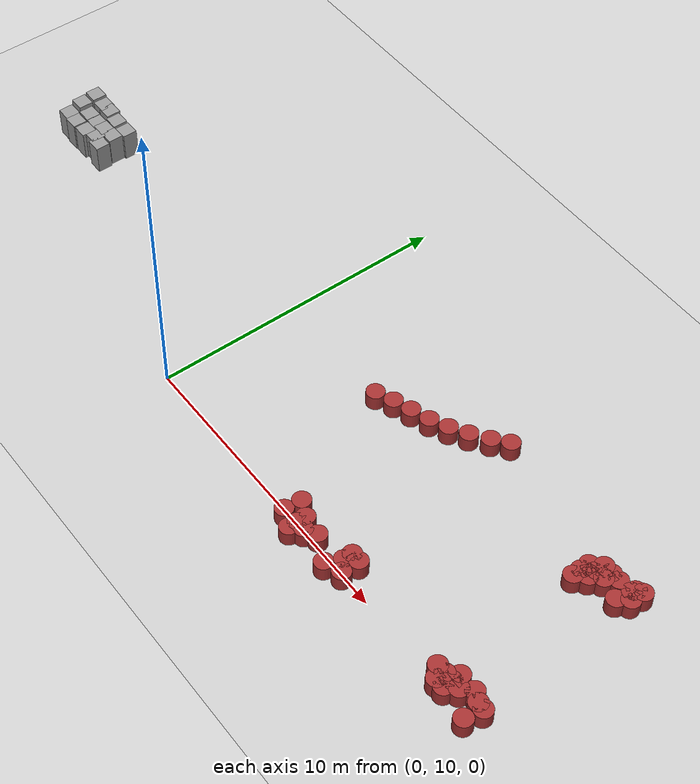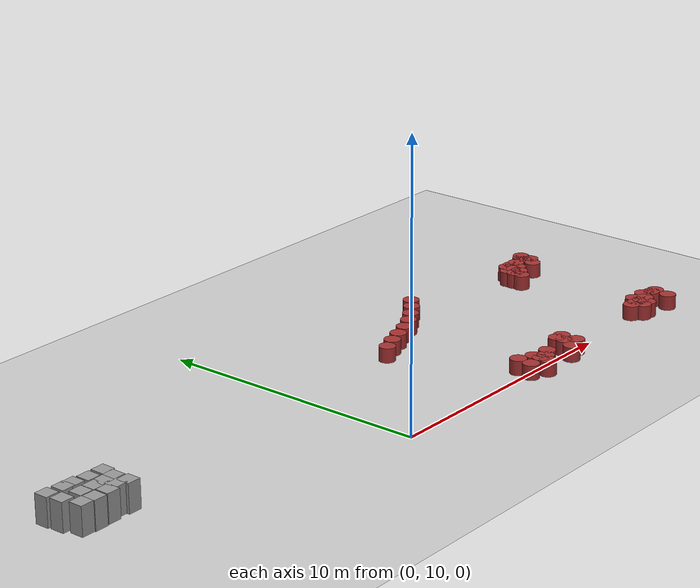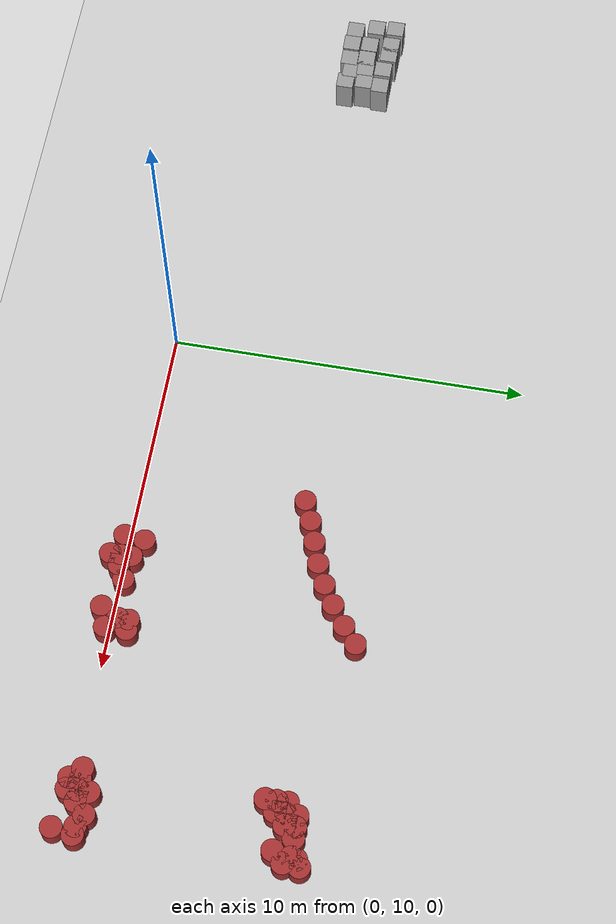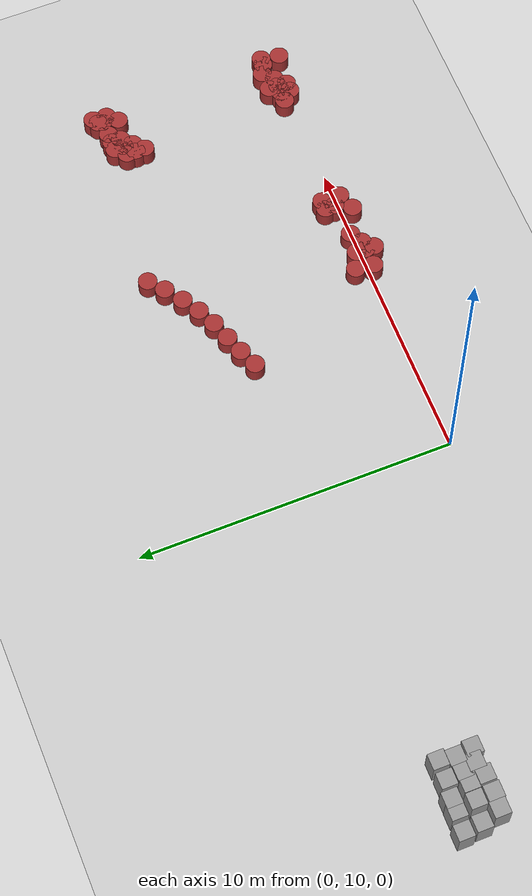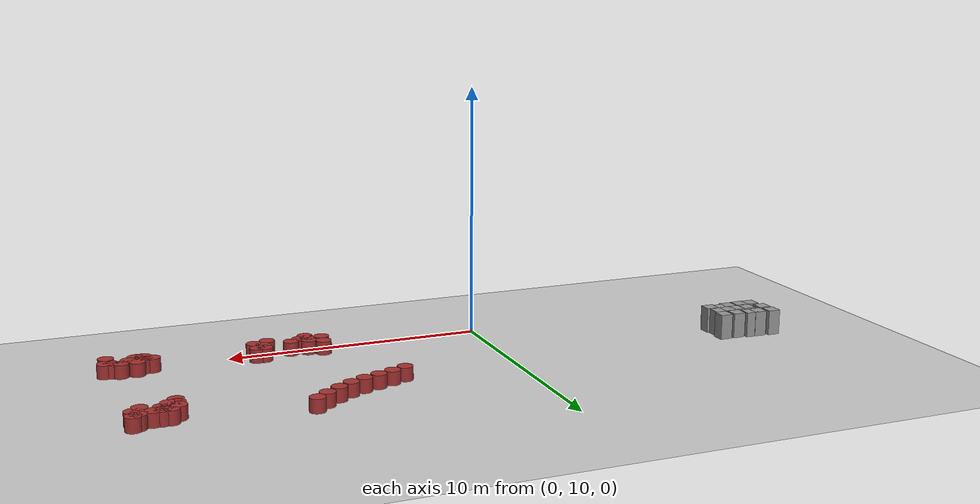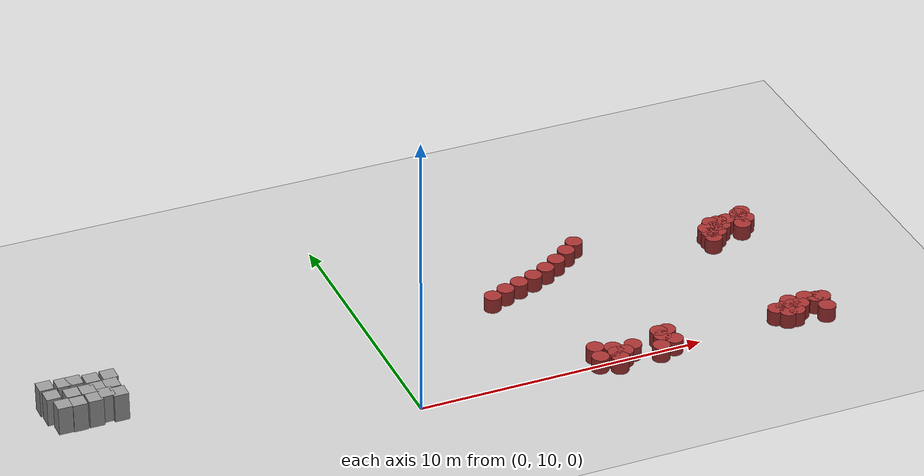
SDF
<sdf version="1.6">
 <world name="default">
  <model name="ground_plane">
   <static>1</static>
   <link name="link">
    <collision name="collision">
     <geometry><plane><normal>0 0 1</normal><size>100 100</size></plane></geometry>
     <surface><friction><ode><mu>100</mu><mu2>50</mu2></ode></friction></surface>
    </collision>
    <visual name="visual">
     <cast_shadows>0</cast_shadows>
     <geometry><plane><normal>0 0 1</normal><size>100 100</size></plane></geometry>
     <material>
      <script><uri>file://media/materials/scripts/gazebo.material</uri><name>Gazebo/Grey</name></script>
     </material>
    </visual>
   </link>
  </model>
  <model name="unit_cylinder_10">
   <static>1</static>
   <pose>5.63003 15.006 0 0 -0 0</pose>
   <link name="link">
    <inertial>
     <mass>1</mass>
     <inertia><ixx>0.145833</ixx><ixy>0</ixy><ixz>0</ixz><iyy>0.145833</iyy><iyz>0</iyz><izz>0.125</izz></inertia>
    </inertial>
    <collision name="collision">
     <geometry><cylinder><radius>0.3</radius><length>1</length></cylinder></geometry>
    </collision>
    <visual name="visual">
     <geometry><cylinder><radius>0.3</radius><length>1</length></cylinder></geometry>
     <material><ambient>0.648 0.192 0.192 1</ambient><diffuse>0.648 0.192 0.192 1</diffuse></material>
     <material>
      <script><name>Gazebo/Grey</name><uri>file://media/materials/scripts/gazebo.material</uri></script>
     </material>
    </visual>
   </link>
  </model>
  <model name="unit_cylinder_50">
   <static>1</static>
   <pose>6.36842 10.4436 0 0 -0 0</pose>
   <link name="link">
    <inertial>
     <mass>1</mass>
     <inertia><ixx>0.145833</ixx><ixy>0</ixy><ixz>0</ixz><iyy>0.145833</iyy><iyz>0</iyz><izz>0.125</izz></inertia>
    </inertial>
    <collision name="collision">
     <geometry><cylinder><radius>0.3</radius><length>1</length></cylinder></geometry>
    </collision>
    <visual name="visual">
     <geometry><cylinder><radius>0.3</radius><length>1</length></cylinder></geometry>
     <material><ambient>0.648 0.192 0.192 1</ambient><diffuse>0.648 0.192 0.192 1</diffuse></material>
     <material>
      <script><name>Gazebo/Grey</name><uri>file://media/materials/scripts/gazebo.material</uri></script>
     </material>
    </visual>
   </link>
  </model>
  <model name="unit_cylinder_55">
   <static>1</static>
   <pose>6.304 9.86983 0 0 -0 0</pose>
   <link name="link">
    <inertial>
     <mass>1</mass>
     <inertia><ixx>0.145833</ixx><ixy>0</ixy><ixz>0</ixz><iyy>0.145833</iyy><iyz>0</iyz><izz>0.125</izz></inertia>
    </inertial>
    <collision name="collision">
     <geometry><cylinder><radius>0.3</radius><length>1</length></cylinder></geometry>
    </collision>
    <visual name="visual">
     <geometry><cylinder><radius>0.3</radius><length>1</length></cylinder></geometry>
     <material><ambient>0.648 0.192 0.192 1</ambient><diffuse>0.648 0.192 0.192 1</diffuse></material>
     <material>
      <script><name>Gazebo/Grey</name><uri>file://media/materials/scripts/gazebo.material</uri></script>
     </material>
    </visual>
   </link>
  </model>
  <model name="unit_cylinder_59">
   <static>1</static>
   <pose>5.04319 14.7989 0 0 -0 0</pose>
   <link name="link">
    <inertial>
     <mass>1</mass>
     <inertia><ixx>0.145833</ixx><ixy>0</ixy><ixz>0</ixz><iyy>0.145833</iyy><iyz>0</iyz><izz>0.125</izz></inertia>
    </inertial>
    <collision name="collision">
     <geometry><cylinder><radius>0.3</radius><length>1</length></cylinder></geometry>
    </collision>
    <visual name="visual">
     <geometry><cylinder><radius>0.3</radius><length>1</length></cylinder></geometry>
     <material><ambient>0.648 0.192 0.192 1</ambient><diffuse>0.648 0.192 0.192 1</diffuse></material>
     <material>
      <script><name>Gazebo/Grey</name><uri>file://media/materials/scripts/gazebo.material</uri></script>
     </material>
    </visual>
   </link>
  </model>
  <model name="unit_cylinder_60">
   <static>1</static>
   <pose>4.47051 14.5568 0 0 -0 0</pose>
   <link name="link">
    <inertial>
     <mass>1</mass>
     <inertia><ixx>0.145833</ixx><ixy>0</ixy><ixz>0</ixz><iyy>0.145833</iyy><iyz>0</iyz><izz>0.125</izz></inertia>
    </inertial>
    <collision name="collision">
     <geometry><cylinder><radius>0.3</radius><length>1</length></cylinder></geometry>
    </collision>
    <visual name="visual">
     <geometry><cylinder><radius>0.3</radius><length>1</length></cylinder></geometry>
     <material><ambient>0.648 0.192 0.192 1</ambient><diffuse>0.648 0.192 0.192 1</diffuse></material>
     <material>
      <script><name>Gazebo/Grey</name><uri>file://media/materials/scripts/gazebo.material</uri></script>
     </material>
    </visual>
   </link>
  </model>
  <model name="unit_cylinder_62">
   <static>1</static>
   <pose>6.81366 15.4863 0 0 -0 0</pose>
   <link name="link">
    <inertial>
     <mass>1</mass>
     <inertia><ixx>0.145833</ixx><ixy>0</ixy><ixz>0</ixz><iyy>0.145833</iyy><iyz>0</iyz><izz>0.125</izz></inertia>
    </inertial>
    <collision name="collision">
     <geometry><cylinder><radius>0.3</radius><length>1</length></cylinder></geometry>
    </collision>
    <visual name="visual">
     <geometry><cylinder><radius>0.3</radius><length>1</length></cylinder></geometry>
     <material><ambient>0.648 0.192 0.192 1</ambient><diffuse>0.648 0.192 0.192 1</diffuse></material>
     <material>
      <script><name>Gazebo/Grey</name><uri>file://media/materials/scripts/gazebo.material</uri></script>
     </material>
    </visual>
   </link>
  </model>
  <model name="unit_cylinder_63">
   <static>1</static>
   <pose>6.24098 15.2147 0 0 -0 0</pose>
   <link name="link">
    <inertial>
     <mass>1</mass>
     <inertia><ixx>0.145833</ixx><ixy>0</ixy><ixz>0</ixz><iyy>0.145833</iyy><iyz>0</iyz><izz>0.125</izz></inertia>
    </inertial>
    <collision name="collision">
     <geometry><cylinder><radius>0.3</radius><length>1</length></cylinder></geometry>
    </collision>
    <visual name="visual">
     <geometry><cylinder><radius>0.3</radius><length>1</length></cylinder></geometry>
     <material><ambient>0.648 0.192 0.192 1</ambient><diffuse>0.648 0.192 0.192 1</diffuse></material>
     <material>
      <script><name>Gazebo/Grey</name><uri>file://media/materials/scripts/gazebo.material</uri></script>
     </material>
    </visual>
   </link>
  </model>
  <model name="unit_cylinder_66">
   <static>1</static>
   <pose>7.3541 15.8169 0 0 -0 0</pose>
   <link name="link">
    <inertial>
     <mass>1</mass>
     <inertia><ixx>0.145833</ixx><ixy>0</ixy><ixz>0</ixz><iyy>0.145833</iyy><iyz>0</iyz><izz>0.125</izz></inertia>
    </inertial>
    <collision name="collision">
     <geometry><cylinder><radius>0.3</radius><length>1</length></cylinder></geometry>
    </collision>
    <visual name="visual">
     <geometry><cylinder><radius>0.3</radius><length>1</length></cylinder></geometry>
     <material><ambient>0.648 0.192 0.192 1</ambient><diffuse>0.648 0.192 0.192 1</diffuse></material>
     <material>
      <script><name>Gazebo/Grey</name><uri>file://media/materials/scripts/gazebo.material</uri></script>
     </material>
    </visual>
   </link>
  </model>
  <model name="unit_cylinder_67">
   <static>1</static>
   <pose>7.89653 16.2066 0 0 -0 0</pose>
   <link name="link">
    <inertial>
     <mass>1</mass>
     <inertia><ixx>0.145833</ixx><ixy>0</ixy><ixz>0</ixz><iyy>0.145833</iyy><iyz>0</iyz><izz>0.125</izz></inertia>
    </inertial>
    <collision name="collision">
     <geometry><cylinder><radius>0.3</radius><length>1</length></cylinder></geometry>
    </collision>
    <visual name="visual">
     <geometry><cylinder><radius>0.3</radius><length>1</length></cylinder></geometry>
     <material><ambient>0.648 0.192 0.192 1</ambient><diffuse>0.648 0.192 0.192 1</diffuse></material>
     <material>
      <script><name>Gazebo/Grey</name><uri>file://media/materials/scripts/gazebo.material</uri></script>
     </material>
    </visual>
   </link>
  </model>
  <model name="unit_cylinder_69">
   <static>1</static>
   <pose>6.9 9.6 0 0 -0 0</pose>
   <link name="link">
    <inertial>
     <mass>1</mass>
     <inertia><ixx>0.145833</ixx><ixy>0</ixy><ixz>0</ixz><iyy>0.145833</iyy><iyz>0</iyz><izz>0.125</izz></inertia>
    </inertial>
    <collision name="collision">
     <geometry><cylinder><radius>0.3</radius><length>1</length></cylinder></geometry>
    </collision>
    <visual name="visual">
     <geometry><cylinder><radius>0.3</radius><length>1</length></cylinder></geometry>
     <material><ambient>0.648 0.192 0.192 1</ambient><diffuse>0.648 0.192 0.192 1</diffuse></material>
     <material>
      <script><name>Gazebo/Grey</name><uri>file://media/materials/scripts/gazebo.material</uri></script>
     </material>
    </visual>
   </link>
  </model>
  <model name="unit_cylinder_70">
   <static>1</static>
   <pose>6.9 9.9 0 0 -0 0</pose>
   <link name="link">
    <inertial>
     <mass>1</mass>
     <inertia><ixx>0.145833</ixx><ixy>0</ixy><ixz>0</ixz><iyy>0.145833</iyy><iyz>0</iyz><izz>0.125</izz></inertia>
    </inertial>
    <collision name="collision">
     <geometry><cylinder><radius>0.3</radius><length>1</length></cylinder></geometry>
    </collision>
    <visual name="visual">
     <geometry><cylinder><radius>0.3</radius><length>1</length></cylinder></geometry>
     <material><ambient>0.648 0.192 0.192 1</ambient><diffuse>0.648 0.192 0.192 1</diffuse></material>
     <material>
      <script><name>Gazebo/Grey</name><uri>file://media/materials/scripts/gazebo.material</uri></script>
     </material>
    </visual>
   </link>
  </model>
  <model name="unit_cylinder_71">
   <static>1</static>
   <pose>6.9 10.2 0 0 -0 0</pose>
   <link name="link">
    <inertial>
     <mass>1</mass>
     <inertia><ixx>0.145833</ixx><ixy>0</ixy><ixz>0</ixz><iyy>0.145833</iyy><iyz>0</iyz><izz>0.125</izz></inertia>
    </inertial>
    <collision name="collision">
     <geometry><cylinder><radius>0.3</radius><length>1</length></cylinder></geometry>
    </collision>
    <visual name="visual">
     <geometry><cylinder><radius>0.3</radius><length>1</length></cylinder></geometry>
     <material><ambient>0.648 0.192 0.192 1</ambient><diffuse>0.648 0.192 0.192 1</diffuse></material>
     <material>
      <script><name>Gazebo/Grey</name><uri>file://media/materials/scripts/gazebo.material</uri></script>
     </material>
    </visual>
   </link>
  </model>
  <model name="unit_cylinder_72">
   <static>1</static>
   <pose>7.2 9.9 0 0 -0 0</pose>
   <link name="link">
    <inertial>
     <mass>1</mass>
     <inertia><ixx>0.145833</ixx><ixy>0</ixy><ixz>0</ixz><iyy>0.145833</iyy><iyz>0</iyz><izz>0.125</izz></inertia>
    </inertial>
    <collision name="collision">
     <geometry><cylinder><radius>0.3</radius><length>1</length></cylinder></geometry>
    </collision>
    <visual name="visual">
     <geometry><cylinder><radius>0.3</radius><length>1</length></cylinder></geometry>
     <material><ambient>0.648 0.192 0.192 1</ambient><diffuse>0.648 0.192 0.192 1</diffuse></material>
     <material>
      <script><name>Gazebo/Grey</name><uri>file://media/materials/scripts/gazebo.material</uri></script>
     </material>
    </visual>
   </link>
  </model>
  <model name="unit_cylinder_82">
   <static>1</static>
   <pose>8.43246 9.69504 0 0 -0 0</pose>
   <link name="link">
    <inertial>
     <mass>1</mass>
     <inertia><ixx>0.145833</ixx><ixy>0</ixy><ixz>0</ixz><iyy>0.145833</iyy><iyz>0</iyz><izz>0.125</izz></inertia>
    </inertial>
    <collision name="collision">
     <geometry><cylinder><radius>0.3</radius><length>1</length></cylinder></geometry>
    </collision>
    <visual name="visual">
     <geometry><cylinder><radius>0.3</radius><length>1</length></cylinder></geometry>
     <material><ambient>0.648 0.192 0.192 1</ambient><diffuse>0.648 0.192 0.192 1</diffuse></material>
     <material>
      <script><name>Gazebo/Grey</name><uri>file://media/materials/scripts/gazebo.material</uri></script>
     </material>
    </visual>
   </link>
  </model>
  <model name="unit_cylinder_88">
   <static>1</static>
   <pose>7.58689 10.1187 0 0 -0 0</pose>
   <link name="link">
    <inertial>
     <mass>1</mass>
     <inertia><ixx>0.145833</ixx><ixy>0</ixy><ixz>0</ixz><iyy>0.145833</iyy><iyz>0</iyz><izz>0.125</izz></inertia>
    </inertial>
    <collision name="collision">
     <geometry><cylinder><radius>0.3</radius><length>1</length></cylinder></geometry>
    </collision>
    <visual name="visual">
     <geometry><cylinder><radius>0.3</radius><length>1</length></cylinder></geometry>
     <material><ambient>0.648 0.192 0.192 1</ambient><diffuse>0.648 0.192 0.192 1</diffuse></material>
     <material>
      <script><name>Gazebo/Grey</name><uri>file://media/materials/scripts/gazebo.material</uri></script>
     </material>
    </visual>
   </link>
  </model>
  <model name="unit_cylinder_89">
   <static>1</static>
   <pose>8.7 10.2 0 0 -0 0</pose>
   <link name="link">
    <inertial>
     <mass>1</mass>
     <inertia><ixx>0.145833</ixx><ixy>0</ixy><ixz>0</ixz><iyy>0.145833</iyy><iyz>0</iyz><izz>0.125</izz></inertia>
    </inertial>
    <collision name="collision">
     <geometry><cylinder><radius>0.3</radius><length>1</length></cylinder></geometry>
    </collision>
    <visual name="visual">
     <geometry><cylinder><radius>0.3</radius><length>1</length></cylinder></geometry>
     <material><ambient>0.648 0.192 0.192 1</ambient><diffuse>0.648 0.192 0.192 1</diffuse></material>
     <material>
      <script><name>Gazebo/Grey</name><uri>file://media/materials/scripts/gazebo.material</uri></script>
     </material>
    </visual>
   </link>
  </model>
  <model name="unit_cylinder_90">
   <static>1</static>
   <pose>8.7 10.5 0 0 -0 0</pose>
   <link name="link">
    <inertial>
     <mass>1</mass>
     <inertia><ixx>0.145833</ixx><ixy>0</ixy><ixz>0</ixz><iyy>0.145833</iyy><iyz>0</iyz><izz>0.125</izz></inertia>
    </inertial>
    <collision name="collision">
     <geometry><cylinder><radius>0.3</radius><length>1</length></cylinder></geometry>
    </collision>
    <visual name="visual">
     <geometry><cylinder><radius>0.3</radius><length>1</length></cylinder></geometry>
     <material><ambient>0.648 0.192 0.192 1</ambient><diffuse>0.648 0.192 0.192 1</diffuse></material>
     <material>
      <script><name>Gazebo/Grey</name><uri>file://media/materials/scripts/gazebo.material</uri></script>
     </material>
    </visual>
   </link>
  </model>
  <model name="unit_cylinder_98">
   <static>1</static>
   <pose>9 9.9 0 0 -0 0</pose>
   <link name="link">
    <inertial>
     <mass>1</mass>
     <inertia><ixx>0.145833</ixx><ixy>0</ixy><ixz>0</ixz><iyy>0.145833</iyy><iyz>0</iyz><izz>0.125</izz></inertia>
    </inertial>
    <collision name="collision">
     <geometry><cylinder><radius>0.3</radius><length>1</length></cylinder></geometry>
    </collision>
    <visual name="visual">
     <geometry><cylinder><radius>0.3</radius><length>1</length></cylinder></geometry>
     <material><ambient>0.648 0.192 0.192 1</ambient><diffuse>0.648 0.192 0.192 1</diffuse></material>
     <material>
      <script><name>Gazebo/Grey</name><uri>file://media/materials/scripts/gazebo.material</uri></script>
     </material>
    </visual>
   </link>
  </model>
  <model name="unit_cylinder_99">
   <static>1</static>
   <pose>9 10.5 0 0 -0 0</pose>
   <link name="link">
    <inertial>
     <mass>1</mass>
     <inertia><ixx>0.145833</ixx><ixy>0</ixy><ixz>0</ixz><iyy>0.145833</iyy><iyz>0</iyz><izz>0.125</izz></inertia>
    </inertial>
    <collision name="collision">
     <geometry><cylinder><radius>0.3</radius><length>1</length></cylinder></geometry>
    </collision>
    <visual name="visual">
     <geometry><cylinder><radius>0.3</radius><length>1</length></cylinder></geometry>
     <material><ambient>0.648 0.192 0.192 1</ambient><diffuse>0.648 0.192 0.192 1</diffuse></material>
     <material>
      <script><name>Gazebo/Grey</name><uri>file://media/materials/scripts/gazebo.material</uri></script>
     </material>
    </visual>
   </link>
  </model>
  <model name="unit_cylinder_117">
   <static>1</static>
   <pose>8.35858 16.594 0 0 -0 0</pose>
   <link name="link">
    <inertial>
     <mass>1</mass>
     <inertia><ixx>0.145833</ixx><ixy>0</ixy><ixz>0</ixz><iyy>0.145833</iyy><iyz>0</iyz><izz>0.125</izz></inertia>
    </inertial>
    <collision name="collision">
     <geometry><cylinder><radius>0.3</radius><length>1</length></cylinder></geometry>
    </collision>
    <visual name="visual">
     <geometry><cylinder><radius>0.3</radius><length>1</length></cylinder></geometry>
     <material><ambient>0.648 0.192 0.192 1</ambient><diffuse>0.648 0.192 0.192 1</diffuse></material>
     <material>
      <script><name>Gazebo/Grey</name><uri>file://media/materials/scripts/gazebo.material</uri></script>
     </material>
    </visual>
   </link>
  </model>
  <model name="unit_cylinder_128">
   <static>1</static>
   <pose>12.9 10.2 0 0 -0 0</pose>
   <link name="link">
    <inertial>
     <mass>1</mass>
     <inertia><ixx>0.145833</ixx><ixy>0</ixy><ixz>0</ixz><iyy>0.145833</iyy><iyz>0</iyz><izz>0.125</izz></inertia>
    </inertial>
    <collision name="collision">
     <geometry><cylinder><radius>0.3</radius><length>1</length></cylinder></geometry>
    </collision>
    <visual name="visual">
     <geometry><cylinder><radius>0.3</radius><length>1</length></cylinder></geometry>
     <material><ambient>0.648 0.192 0.192 1</ambient><diffuse>0.648 0.192 0.192 1</diffuse></material>
     <material>
      <script><name>Gazebo/Grey</name><uri>file://media/materials/scripts/gazebo.material</uri></script>
     </material>
    </visual>
   </link>
  </model>
  <model name="unit_cylinder_129">
   <static>1</static>
   <pose>12.9 15 0 0 -0 0</pose>
   <link name="link">
    <inertial>
     <mass>1</mass>
     <inertia><ixx>0.145833</ixx><ixy>0</ixy><ixz>0</ixz><iyy>0.145833</iyy><iyz>0</iyz><izz>0.125</izz></inertia>
    </inertial>
    <collision name="collision">
     <geometry><cylinder><radius>0.3</radius><length>1</length></cylinder></geometry>
    </collision>
    <visual name="visual">
     <geometry><cylinder><radius>0.3</radius><length>1</length></cylinder></geometry>
     <material><ambient>0.648 0.192 0.192 1</ambient><diffuse>0.648 0.192 0.192 1</diffuse></material>
     <material>
      <script><name>Gazebo/Grey</name><uri>file://media/materials/scripts/gazebo.material</uri></script>
     </material>
    </visual>
   </link>
  </model>
  <model name="unit_cylinder_130">
   <static>1</static>
   <pose>12.9 15.3 0 0 -0 0</pose>
   <link name="link">
    <inertial>
     <mass>1</mass>
     <inertia><ixx>0.145833</ixx><ixy>0</ixy><ixz>0</ixz><iyy>0.145833</iyy><iyz>0</iyz><izz>0.125</izz></inertia>
    </inertial>
    <collision name="collision">
     <geometry><cylinder><radius>0.3</radius><length>1</length></cylinder></geometry>
    </collision>
    <visual name="visual">
     <geometry><cylinder><radius>0.3</radius><length>1</length></cylinder></geometry>
     <material><ambient>0.648 0.192 0.192 1</ambient><diffuse>0.648 0.192 0.192 1</diffuse></material>
     <material>
      <script><name>Gazebo/Grey</name><uri>file://media/materials/scripts/gazebo.material</uri></script>
     </material>
    </visual>
   </link>
  </model>
  <model name="unit_cylinder_131">
   <static>1</static>
   <pose>12.9 15.6 0 0 -0 0</pose>
   <link name="link">
    <inertial>
     <mass>1</mass>
     <inertia><ixx>0.145833</ixx><ixy>0</ixy><ixz>0</ixz><iyy>0.145833</iyy><iyz>0</iyz><izz>0.125</izz></inertia>
    </inertial>
    <collision name="collision">
     <geometry><cylinder><radius>0.3</radius><length>1</length></cylinder></geometry>
    </collision>
    <visual name="visual">
     <geometry><cylinder><radius>0.3</radius><length>1</length></cylinder></geometry>
     <material><ambient>0.648 0.192 0.192 1</ambient><diffuse>0.648 0.192 0.192 1</diffuse></material>
     <material>
      <script><name>Gazebo/Grey</name><uri>file://media/materials/scripts/gazebo.material</uri></script>
     </material>
    </visual>
   </link>
  </model>
  <model name="unit_cylinder_132">
   <static>1</static>
   <pose>13.2 9.9 0 0 -0 0</pose>
   <link name="link">
    <inertial>
     <mass>1</mass>
     <inertia><ixx>0.145833</ixx><ixy>0</ixy><ixz>0</ixz><iyy>0.145833</iyy><iyz>0</iyz><izz>0.125</izz></inertia>
    </inertial>
    <collision name="collision">
     <geometry><cylinder><radius>0.3</radius><length>1</length></cylinder></geometry>
    </collision>
    <visual name="visual">
     <geometry><cylinder><radius>0.3</radius><length>1</length></cylinder></geometry>
     <material><ambient>0.648 0.192 0.192 1</ambient><diffuse>0.648 0.192 0.192 1</diffuse></material>
     <material>
      <script><name>Gazebo/Grey</name><uri>file://media/materials/scripts/gazebo.material</uri></script>
     </material>
    </visual>
   </link>
  </model>
  <model name="unit_cylinder_133">
   <static>1</static>
   <pose>13.2 10.2 0 0 -0 0</pose>
   <link name="link">
    <inertial>
     <mass>1</mass>
     <inertia><ixx>0.145833</ixx><ixy>0</ixy><ixz>0</ixz><iyy>0.145833</iyy><iyz>0</iyz><izz>0.125</izz></inertia>
    </inertial>
    <collision name="collision">
     <geometry><cylinder><radius>0.3</radius><length>1</length></cylinder></geometry>
    </collision>
    <visual name="visual">
     <geometry><cylinder><radius>0.3</radius><length>1</length></cylinder></geometry>
     <material><ambient>0.648 0.192 0.192 1</ambient><diffuse>0.648 0.192 0.192 1</diffuse></material>
     <material>
      <script><name>Gazebo/Grey</name><uri>file://media/materials/scripts/gazebo.material</uri></script>
     </material>
    </visual>
   </link>
  </model>
  <model name="unit_cylinder_134">
   <static>1</static>
   <pose>13.2 15.3 0 0 -0 0</pose>
   <link name="link">
    <inertial>
     <mass>1</mass>
     <inertia><ixx>0.145833</ixx><ixy>0</ixy><ixz>0</ixz><iyy>0.145833</iyy><iyz>0</iyz><izz>0.125</izz></inertia>
    </inertial>
    <collision name="collision">
     <geometry><cylinder><radius>0.3</radius><length>1</length></cylinder></geometry>
    </collision>
    <visual name="visual">
     <geometry><cylinder><radius>0.3</radius><length>1</length></cylinder></geometry>
     <material><ambient>0.648 0.192 0.192 1</ambient><diffuse>0.648 0.192 0.192 1</diffuse></material>
     <material>
      <script><name>Gazebo/Grey</name><uri>file://media/materials/scripts/gazebo.material</uri></script>
     </material>
    </visual>
   </link>
  </model>
  <model name="unit_cylinder_135">
   <static>1</static>
   <pose>13.2 15.6 0 0 -0 0</pose>
   <link name="link">
    <inertial>
     <mass>1</mass>
     <inertia><ixx>0.145833</ixx><ixy>0</ixy><ixz>0</ixz><iyy>0.145833</iyy><iyz>0</iyz><izz>0.125</izz></inertia>
    </inertial>
    <collision name="collision">
     <geometry><cylinder><radius>0.3</radius><length>1</length></cylinder></geometry>
    </collision>
    <visual name="visual">
     <geometry><cylinder><radius>0.3</radius><length>1</length></cylinder></geometry>
     <material><ambient>0.648 0.192 0.192 1</ambient><diffuse>0.648 0.192 0.192 1</diffuse></material>
     <material>
      <script><name>Gazebo/Grey</name><uri>file://media/materials/scripts/gazebo.material</uri></script>
     </material>
    </visual>
   </link>
  </model>
  <model name="unit_cylinder_136">
   <static>1</static>
   <pose>13.2 15.9 0 0 -0 0</pose>
   <link name="link">
    <inertial>
     <mass>1</mass>
     <inertia><ixx>0.145833</ixx><ixy>0</ixy><ixz>0</ixz><iyy>0.145833</iyy><iyz>0</iyz><izz>0.125</izz></inertia>
    </inertial>
    <collision name="collision">
     <geometry><cylinder><radius>0.3</radius><length>1</length></cylinder></geometry>
    </collision>
    <visual name="visual">
     <geometry><cylinder><radius>0.3</radius><length>1</length></cylinder></geometry>
     <material><ambient>0.648 0.192 0.192 1</ambient><diffuse>0.648 0.192 0.192 1</diffuse></material>
     <material>
      <script><name>Gazebo/Grey</name><uri>file://media/materials/scripts/gazebo.material</uri></script>
     </material>
    </visual>
   </link>
  </model>
  <model name="unit_cylinder_137">
   <static>1</static>
   <pose>13.5 9.9 0 0 -0 0</pose>
   <link name="link">
    <inertial>
     <mass>1</mass>
     <inertia><ixx>0.145833</ixx><ixy>0</ixy><ixz>0</ixz><iyy>0.145833</iyy><iyz>0</iyz><izz>0.125</izz></inertia>
    </inertial>
    <collision name="collision">
     <geometry><cylinder><radius>0.3</radius><length>1</length></cylinder></geometry>
    </collision>
    <visual name="visual">
     <geometry><cylinder><radius>0.3</radius><length>1</length></cylinder></geometry>
     <material><ambient>0.648 0.192 0.192 1</ambient><diffuse>0.648 0.192 0.192 1</diffuse></material>
     <material>
      <script><name>Gazebo/Grey</name><uri>file://media/materials/scripts/gazebo.material</uri></script>
     </material>
    </visual>
   </link>
  </model>
  <model name="unit_cylinder_138">
   <static>1</static>
   <pose>13.5 10.2 0 0 -0 0</pose>
   <link name="link">
    <inertial>
     <mass>1</mass>
     <inertia><ixx>0.145833</ixx><ixy>0</ixy><ixz>0</ixz><iyy>0.145833</iyy><iyz>0</iyz><izz>0.125</izz></inertia>
    </inertial>
    <collision name="collision">
     <geometry><cylinder><radius>0.3</radius><length>1</length></cylinder></geometry>
    </collision>
    <visual name="visual">
     <geometry><cylinder><radius>0.3</radius><length>1</length></cylinder></geometry>
     <material><ambient>0.648 0.192 0.192 1</ambient><diffuse>0.648 0.192 0.192 1</diffuse></material>
     <material>
      <script><name>Gazebo/Grey</name><uri>file://media/materials/scripts/gazebo.material</uri></script>
     </material>
    </visual>
   </link>
  </model>
  <model name="unit_cylinder_139">
   <static>1</static>
   <pose>13.5 10.5 0 0 -0 0</pose>
   <link name="link">
    <inertial>
     <mass>1</mass>
     <inertia><ixx>0.145833</ixx><ixy>0</ixy><ixz>0</ixz><iyy>0.145833</iyy><iyz>0</iyz><izz>0.125</izz></inertia>
    </inertial>
    <collision name="collision">
     <geometry><cylinder><radius>0.3</radius><length>1</length></cylinder></geometry>
    </collision>
    <visual name="visual">
     <geometry><cylinder><radius>0.3</radius><length>1</length></cylinder></geometry>
     <material><ambient>0.648 0.192 0.192 1</ambient><diffuse>0.648 0.192 0.192 1</diffuse></material>
     <material>
      <script><name>Gazebo/Grey</name><uri>file://media/materials/scripts/gazebo.material</uri></script>
     </material>
    </visual>
   </link>
  </model>
  <model name="unit_cylinder_140">
   <static>1</static>
   <pose>13.5 15.6 0 0 -0 0</pose>
   <link name="link">
    <inertial>
     <mass>1</mass>
     <inertia><ixx>0.145833</ixx><ixy>0</ixy><ixz>0</ixz><iyy>0.145833</iyy><iyz>0</iyz><izz>0.125</izz></inertia>
    </inertial>
    <collision name="collision">
     <geometry><cylinder><radius>0.3</radius><length>1</length></cylinder></geometry>
    </collision>
    <visual name="visual">
     <geometry><cylinder><radius>0.3</radius><length>1</length></cylinder></geometry>
     <material><ambient>0.648 0.192 0.192 1</ambient><diffuse>0.648 0.192 0.192 1</diffuse></material>
     <material>
      <script><name>Gazebo/Grey</name><uri>file://media/materials/scripts/gazebo.material</uri></script>
     </material>
    </visual>
   </link>
  </model>
  <model name="unit_cylinder_141">
   <static>1</static>
   <pose>13.5 15.9 0 0 -0 0</pose>
   <link name="link">
    <inertial>
     <mass>1</mass>
     <inertia><ixx>0.145833</ixx><ixy>0</ixy><ixz>0</ixz><iyy>0.145833</iyy><iyz>0</iyz><izz>0.125</izz></inertia>
    </inertial>
    <collision name="collision">
     <geometry><cylinder><radius>0.3</radius><length>1</length></cylinder></geometry>
    </collision>
    <visual name="visual">
     <geometry><cylinder><radius>0.3</radius><length>1</length></cylinder></geometry>
     <material><ambient>0.648 0.192 0.192 1</ambient><diffuse>0.648 0.192 0.192 1</diffuse></material>
     <material>
      <script><name>Gazebo/Grey</name><uri>file://media/materials/scripts/gazebo.material</uri></script>
     </material>
    </visual>
   </link>
  </model>
  <model name="unit_cylinder_143">
   <static>1</static>
   <pose>13.8 10.2 0 0 -0 0</pose>
   <link name="link">
    <inertial>
     <mass>1</mass>
     <inertia><ixx>0.145833</ixx><ixy>0</ixy><ixz>0</ixz><iyy>0.145833</iyy><iyz>0</iyz><izz>0.125</izz></inertia>
    </inertial>
    <collision name="collision">
     <geometry><cylinder><radius>0.3</radius><length>1</length></cylinder></geometry>
    </collision>
    <visual name="visual">
     <geometry><cylinder><radius>0.3</radius><length>1</length></cylinder></geometry>
     <material><ambient>0.648 0.192 0.192 1</ambient><diffuse>0.648 0.192 0.192 1</diffuse></material>
     <material>
      <script><name>Gazebo/Grey</name><uri>file://media/materials/scripts/gazebo.material</uri></script>
     </material>
    </visual>
   </link>
  </model>
  <model name="unit_cylinder_144">
   <static>1</static>
   <pose>13.8 15.9 0 0 -0 0</pose>
   <link name="link">
    <inertial>
     <mass>1</mass>
     <inertia><ixx>0.145833</ixx><ixy>0</ixy><ixz>0</ixz><iyy>0.145833</iyy><iyz>0</iyz><izz>0.125</izz></inertia>
    </inertial>
    <collision name="collision">
     <geometry><cylinder><radius>0.3</radius><length>1</length></cylinder></geometry>
    </collision>
    <visual name="visual">
     <geometry><cylinder><radius>0.3</radius><length>1</length></cylinder></geometry>
     <material><ambient>0.648 0.192 0.192 1</ambient><diffuse>0.648 0.192 0.192 1</diffuse></material>
     <material>
      <script><name>Gazebo/Grey</name><uri>file://media/materials/scripts/gazebo.material</uri></script>
     </material>
    </visual>
   </link>
  </model>
  <model name="unit_cylinder_147">
   <static>1</static>
   <pose>14.1 10.5 0 0 -0 0</pose>
   <link name="link">
    <inertial>
     <mass>1</mass>
     <inertia><ixx>0.145833</ixx><ixy>0</ixy><ixz>0</ixz><iyy>0.145833</iyy><iyz>0</iyz><izz>0.125</izz></inertia>
    </inertial>
    <collision name="collision">
     <geometry><cylinder><radius>0.3</radius><length>1</length></cylinder></geometry>
    </collision>
    <visual name="visual">
     <geometry><cylinder><radius>0.3</radius><length>1</length></cylinder></geometry>
     <material><ambient>0.648 0.192 0.192 1</ambient><diffuse>0.648 0.192 0.192 1</diffuse></material>
     <material>
      <script><name>Gazebo/Grey</name><uri>file://media/materials/scripts/gazebo.material</uri></script>
     </material>
    </visual>
   </link>
  </model>
  <model name="unit_cylinder_168">
   <static>1</static>
   <pose>14.5047 16.1725 0 0 -0 0</pose>
   <link name="link">
    <inertial>
     <mass>1</mass>
     <inertia><ixx>0.145833</ixx><ixy>0</ixy><ixz>0</ixz><iyy>0.145833</iyy><iyz>0</iyz><izz>0.125</izz></inertia>
    </inertial>
    <collision name="collision">
     <geometry><cylinder><radius>0.3</radius><length>1</length></cylinder></geometry>
    </collision>
    <visual name="visual">
     <geometry><cylinder><radius>0.3</radius><length>1</length></cylinder></geometry>
     <material><ambient>0.648 0.192 0.192 1</ambient><diffuse>0.648 0.192 0.192 1</diffuse></material>
     <material>
      <script><name>Gazebo/Grey</name><uri>file://media/materials/scripts/gazebo.material</uri></script>
     </material>
    </visual>
   </link>
  </model>
  <model name="unit_cylinder_185">
   <static>1</static>
   <pose>14.1914 15.4233 0 0 -0 0</pose>
   <link name="link">
    <inertial>
     <mass>1</mass>
     <inertia><ixx>0.145833</ixx><ixy>0</ixy><ixz>0</ixz><iyy>0.145833</iyy><iyz>0</iyz><izz>0.125</izz></inertia>
    </inertial>
    <collision name="collision">
     <geometry><cylinder><radius>0.3</radius><length>1</length></cylinder></geometry>
    </collision>
    <visual name="visual">
     <geometry><cylinder><radius>0.3</radius><length>1</length></cylinder></geometry>
     <material><ambient>0.648 0.192 0.192 1</ambient><diffuse>0.648 0.192 0.192 1</diffuse></material>
     <material>
      <script><name>Gazebo/Grey</name><uri>file://media/materials/scripts/gazebo.material</uri></script>
     </material>
    </visual>
   </link>
  </model>
  <model name="unit_cylinder_221">
   <static>1</static>
   <pose>14.3266 16.0651 0 0 -0 0</pose>
   <link name="link">
    <inertial>
     <mass>1</mass>
     <inertia><ixx>0.145833</ixx><ixy>0</ixy><ixz>0</ixz><iyy>0.145833</iyy><iyz>0</iyz><izz>0.125</izz></inertia>
    </inertial>
    <collision name="collision">
     <geometry><cylinder><radius>0.3</radius><length>1</length></cylinder></geometry>
    </collision>
    <visual name="visual">
     <geometry><cylinder><radius>0.3</radius><length>1</length></cylinder></geometry>
     <material><ambient>0.648 0.192 0.192 1</ambient><diffuse>0.648 0.192 0.192 1</diffuse></material>
     <material>
      <script><name>Gazebo/Grey</name><uri>file://media/materials/scripts/gazebo.material</uri></script>
     </material>
    </visual>
   </link>
  </model>
  <model name="unit_cylinder_222">
   <static>1</static>
   <pose>14.2841 15.9262 0 0 -0 0</pose>
   <link name="link">
    <inertial>
     <mass>1</mass>
     <inertia><ixx>0.145833</ixx><ixy>0</ixy><ixz>0</ixz><iyy>0.145833</iyy><iyz>0</iyz><izz>0.125</izz></inertia>
    </inertial>
    <collision name="collision">
     <geometry><cylinder><radius>0.3</radius><length>1</length></cylinder></geometry>
    </collision>
    <visual name="visual">
     <geometry><cylinder><radius>0.3</radius><length>1</length></cylinder></geometry>
     <material><ambient>0.648 0.192 0.192 1</ambient><diffuse>0.648 0.192 0.192 1</diffuse></material>
     <material>
      <script><name>Gazebo/Grey</name><uri>file://media/materials/scripts/gazebo.material</uri></script>
     </material>
    </visual>
   </link>
  </model>
  <model name="unit_cylinder_223">
   <static>1</static>
   <pose>14.4764 15.7299 0 0 -0 0</pose>
   <link name="link">
    <inertial>
     <mass>1</mass>
     <inertia><ixx>0.145833</ixx><ixy>0</ixy><ixz>0</ixz><iyy>0.145833</iyy><iyz>0</iyz><izz>0.125</izz></inertia>
    </inertial>
    <collision name="collision">
     <geometry><cylinder><radius>0.3</radius><length>1</length></cylinder></geometry>
    </collision>
    <visual name="visual">
     <geometry><cylinder><radius>0.3</radius><length>1</length></cylinder></geometry>
     <material><ambient>0.648 0.192 0.192 1</ambient><diffuse>0.648 0.192 0.192 1</diffuse></material>
     <material>
      <script><name>Gazebo/Grey</name><uri>file://media/materials/scripts/gazebo.material</uri></script>
     </material>
    </visual>
   </link>
  </model>
  <model name="unit_cylinder_266">
   <static>1</static>
   <pose>14.4304 10.3456 0 0 -0 0</pose>
   <link name="link">
    <inertial>
     <mass>1</mass>
     <inertia><ixx>0.145833</ixx><ixy>0</ixy><ixz>0</ixz><iyy>0.145833</iyy><iyz>0</iyz><izz>0.125</izz></inertia>
    </inertial>
    <collision name="collision">
     <geometry><cylinder><radius>0.3</radius><length>1</length></cylinder></geometry>
    </collision>
    <visual name="visual">
     <geometry><cylinder><radius>0.3</radius><length>1</length></cylinder></geometry>
     <material><ambient>0.648 0.192 0.192 1</ambient><diffuse>0.648 0.192 0.192 1</diffuse></material>
     <material>
      <script><name>Gazebo/Grey</name><uri>file://media/materials/scripts/gazebo.material</uri></script>
     </material>
    </visual>
   </link>
  </model>
  <model name="unit_cylinder_304">
   <static>1</static>
   <pose>14.6626 10.3215 0 0 -0 0</pose>
   <link name="link">
    <inertial>
     <mass>1</mass>
     <inertia><ixx>0.145833</ixx><ixy>0</ixy><ixz>0</ixz><iyy>0.145833</iyy><iyz>0</iyz><izz>0.125</izz></inertia>
    </inertial>
    <collision name="collision">
     <geometry><cylinder><radius>0.3</radius><length>1</length></cylinder></geometry>
    </collision>
    <visual name="visual">
     <geometry><cylinder><radius>0.3</radius><length>1</length></cylinder></geometry>
     <material><ambient>0.648 0.192 0.192 1</ambient><diffuse>0.648 0.192 0.192 1</diffuse></material>
     <material>
      <script><name>Gazebo/Grey</name><uri>file://media/materials/scripts/gazebo.material</uri></script>
     </material>
    </visual>
   </link>
  </model>
  <model name="unit_cylinder_344">
   <static>1</static>
   <pose>14.556 9.73444 0 0 -0 0</pose>
   <link name="link">
    <inertial>
     <mass>1</mass>
     <inertia><ixx>0.145833</ixx><ixy>0</ixy><ixz>0</ixz><iyy>0.145833</iyy><iyz>0</iyz><izz>0.125</izz></inertia>
    </inertial>
    <collision name="collision">
     <geometry><cylinder><radius>0.3</radius><length>1</length></cylinder></geometry>
    </collision>
    <visual name="visual">
     <geometry><cylinder><radius>0.3</radius><length>1</length></cylinder></geometry>
     <material><ambient>0.648 0.192 0.192 1</ambient><diffuse>0.648 0.192 0.192 1</diffuse></material>
     <material>
      <script><name>Gazebo/Grey</name><uri>file://media/materials/scripts/gazebo.material</uri></script>
     </material>
    </visual>
   </link>
  </model>
  <model name="unit_box_clone">
   <pose>-10.6641 14.5099 0.5 -1e-06 -2e-06 -0.000121</pose>
   <link name="link">
    <inertial>
     <mass>1</mass>
     <inertia>
      <ixx>0.166667</ixx>
      <ixy>0</ixy>
      <ixz>0</ixz>
      <iyy>0.166667</iyy>
      <iyz>0</iyz>
      <izz>0.166667</izz>
     </inertia>
    </inertial>
    <collision name="collision"><geometry><box><size>0.5 0.5 1</size></box></geometry></collision>
    <visual name="visual">
     <geometry><box><size>0.5 0.5 1</size></box></geometry>
     <material>
      <script><name>Gazebo/Grey</name><uri>file://media/materials/scripts/gazebo.material</uri></script>
     </material>
    </visual>
   </link>
  </model>
  <model name="unit_box_clone_0">
   <pose>-11.2666 14.562 0.5 -2e-06 -2e-06 -0.000152</pose>
   <link name="link">
    <inertial>
     <mass>1</mass>
     <inertia>
      <ixx>0.166667</ixx>
      <ixy>0</ixy>
      <ixz>0</ixz>
      <iyy>0.166667</iyy>
      <iyz>0</iyz>
      <izz>0.166667</izz>
     </inertia>
    </inertial>
    <collision name="collision"><geometry><box><size>0.5 0.5 1</size></box></geometry></collision>
    <visual name="visual">
     <geometry><box><size>0.5 0.5 1</size></box></geometry>
     <material>
      <script><name>Gazebo/Grey</name><uri>file://media/materials/scripts/gazebo.material</uri></script>
     </material>
    </visual>
   </link>
  </model>
  <model name="unit_box_clone_1">
   <pose>-10.0531 13.8638 0.5 1e-06 2e-06 -5.6e-05</pose>
   <link name="link">
    <inertial>
     <mass>1</mass>
     <inertia>
      <ixx>0.166667</ixx>
      <ixy>0</ixy>
      <ixz>0</ixz>
      <iyy>0.166667</iyy>
      <iyz>0</iyz>
      <izz>0.166667</izz>
     </inertia>
    </inertial>
    <collision name="collision"><geometry><box><size>0.5 0.5 1</size></box></geometry></collision>
    <visual name="visual">
     <geometry><box><size>0.5 0.5 1</size></box></geometry>
     <material>
      <script><name>Gazebo/Grey</name><uri>file://media/materials/scripts/gazebo.material</uri></script>
     </material>
    </visual>
   </link>
  </model>
  <model name="unit_box_clone_2">
   <pose>-10.5668 13.8747 0.5 2e-06 -1e-06 -5.3e-05</pose>
   <link name="link">
    <inertial>
     <mass>1</mass>
     <inertia>
      <ixx>0.166667</ixx>
      <ixy>0</ixy>
      <ixz>0</ixz>
      <iyy>0.166667</iyy>
      <iyz>0</iyz>
      <izz>0.166667</izz>
     </inertia>
    </inertial>
    <collision name="collision"><geometry><box><size>0.5 0.5 1</size></box></geometry></collision>
    <visual name="visual">
     <geometry><box><size>0.5 0.5 1</size></box></geometry>
     <material>
      <script><name>Gazebo/Grey</name><uri>file://media/materials/scripts/gazebo.material</uri></script>
     </material>
    </visual>
   </link>
  </model>
  <model name="unit_box_clone_3">
   <pose>-11.2169 13.9833 0.5 2e-06 1e-06 -0.000114</pose>
   <link name="link">
    <inertial>
     <mass>1</mass>
     <inertia>
      <ixx>0.166667</ixx>
      <ixy>0</ixy>
      <ixz>0</ixz>
      <iyy>0.166667</iyy>
      <iyz>0</iyz>
      <izz>0.166667</izz>
     </inertia>
    </inertial>
    <collision name="collision"><geometry><box><size>0.5 0.5 1</size></box></geometry></collision>
    <visual name="visual">
     <geometry><box><size>0.5 0.5 1</size></box></geometry>
     <material>
      <script><name>Gazebo/Grey</name><uri>file://media/materials/scripts/gazebo.material</uri></script>
     </material>
    </visual>
   </link>
  </model>
  <model name="unit_box_clone_4">
   <pose>-9.99263 13.3565 0.5 -1e-06 1e-06 -5e-05</pose>
   <link name="link">
    <inertial>
     <mass>1</mass>
     <inertia>
      <ixx>0.166667</ixx>
      <ixy>0</ixy>
      <ixz>0</ixz>
      <iyy>0.166667</iyy>
      <iyz>0</iyz>
      <izz>0.166667</izz>
     </inertia>
    </inertial>
    <collision name="collision"><geometry><box><size>0.5 0.5 1</size></box></geometry></collision>
    <visual name="visual">
     <geometry><box><size>0.5 0.5 1</size></box></geometry>
     <material>
      <script><name>Gazebo/Grey</name><uri>file://media/materials/scripts/gazebo.material</uri></script>
     </material>
    </visual>
   </link>
  </model>
  <model name="unit_box_clone_5">
   <pose>-10.5409 13.3372 0.5 -1e-06 -1e-06 -0.000104</pose>
   <link name="link">
    <inertial>
     <mass>1</mass>
     <inertia>
      <ixx>0.166667</ixx>
      <ixy>0</ixy>
      <ixz>0</ixz>
      <iyy>0.166667</iyy>
      <iyz>0</iyz>
      <izz>0.166667</izz>
     </inertia>
    </inertial>
    <collision name="collision"><geometry><box><size>0.5 0.5 1</size></box></geometry></collision>
    <visual name="visual">
     <geometry><box><size>0.5 0.5 1</size></box></geometry>
     <material>
      <script><name>Gazebo/Grey</name><uri>file://media/materials/scripts/gazebo.material</uri></script>
     </material>
    </visual>
   </link>
  </model>
  <model name="unit_box_clone_6">
   <pose>-11.0394 13.3678 0.5 2e-06 1e-06 -0.000145</pose>
   <link name="link">
    <inertial>
     <mass>1</mass>
     <inertia>
      <ixx>0.166667</ixx>
      <ixy>0</ixy>
      <ixz>0</ixz>
      <iyy>0.166667</iyy>
      <iyz>0</iyz>
      <izz>0.166667</izz>
     </inertia>
    </inertial>
    <collision name="collision"><geometry><box><size>0.5 0.5 1</size></box></geometry></collision>
    <visual name="visual">
     <geometry><box><size>0.5 0.5 1</size></box></geometry>
     <material>
      <script><name>Gazebo/Grey</name><uri>file://media/materials/scripts/gazebo.material</uri></script>
     </material>
    </visual>
   </link>
  </model>
  <model name="unit_box_clone_7">
   <pose>-9.55038 13.469 0.5 -2e-06 1e-06 -8.7e-05</pose>
   <link name="link">
    <inertial>
     <mass>1</mass>
     <inertia>
      <ixx>0.166667</ixx>
      <ixy>0</ixy>
      <ixz>0</ixz>
      <iyy>0.166667</iyy>
      <iyz>0</iyz>
      <izz>0.166667</izz>
     </inertia>
    </inertial>
    <collision name="collision"><geometry><box><size>0.5 0.5 1</size></box></geometry></collision>
    <visual name="visual">
     <geometry><box><size>0.5 0.5 1</size></box></geometry>
     <material>
      <script><name>Gazebo/Grey</name><uri>file://media/materials/scripts/gazebo.material</uri></script>
     </material>
    </visual>
   </link>
  </model>
  <model name="unit_box_clone_8">
   <pose>-9.66943 13.8917 0.5 -2e-06 1e-06 -7.3e-05</pose>
   <link name="link">
    <inertial>
     <mass>1</mass>
     <inertia>
      <ixx>0.166667</ixx>
      <ixy>0</ixy>
      <ixz>0</ixz>
      <iyy>0.166667</iyy>
      <iyz>0</iyz>
      <izz>0.166667</izz>
     </inertia>
    </inertial>
    <collision name="collision"><geometry><box><size>0.5 0.5 1</size></box></geometry></collision>
    <visual name="visual">
     <geometry><box><size>0.5 0.5 1</size></box></geometry>
     <material>
      <script><name>Gazebo/Grey</name><uri>file://media/materials/scripts/gazebo.material</uri></script>
     </material>
    </visual>
   </link>
  </model>
  <model name="unit_box_clone_9">
   <pose>-9.73092 14.4164 0.5 -1e-06 1e-06 -9.4e-05</pose>
   <link name="link">
    <inertial>
     <mass>1</mass>
     <inertia>
      <ixx>0.166667</ixx>
      <ixy>0</ixy>
      <ixz>0</ixz>
      <iyy>0.166667</iyy>
      <iyz>0</iyz>
      <izz>0.166667</izz>
     </inertia>
    </inertial>
    <collision name="collision"><geometry><box><size>0.5 0.5 1</size></box></geometry></collision>
    <visual name="visual">
     <geometry><box><size>0.5 0.5 1</size></box></geometry>
     <material>
      <script><name>Gazebo/Grey</name><uri>file://media/materials/scripts/gazebo.material</uri></script>
     </material>
    </visual>
   </link>
  </model>
  <model name="unit_box_clone_10">
   <pose>-9.14117 14.4162 0.500001 1.1e-05 -0 -6.9e-05</pose>
   <link name="link">
    <inertial>
     <mass>1</mass>
     <inertia>
      <ixx>0.166667</ixx>
      <ixy>0</ixy>
      <ixz>0</ixz>
      <iyy>0.166667</iyy>
      <iyz>0</iyz>
      <izz>0.166667</izz>
     </inertia>
    </inertial>
    <collision name="collision"><geometry><box><size>0.5 0.5 1</size></box></geometry></collision>
    <visual name="visual">
     <geometry><box><size>0.5 0.5 1</size></box></geometry>
     <material>
      <script><name>Gazebo/Grey</name><uri>file://media/materials/scripts/gazebo.material</uri></script>
     </material>
    </visual>
   </link>
  </model>
  <model name="unit_box_clone_11">
   <pose>-9.21513 13.9133 0.5 -1e-06 -2e-06 -8.7e-05</pose>
   <link name="link">
    <inertial>
     <mass>1</mass>
     <inertia>
      <ixx>0.166667</ixx>
      <ixy>0</ixy>
      <ixz>0</ixz>
      <iyy>0.166667</iyy>
      <iyz>0</iyz>
      <izz>0.166667</izz>
     </inertia>
    </inertial>
    <collision name="collision"><geometry><box><size>0.5 0.5 1</size></box></geometry></collision>
    <visual name="visual">
     <geometry><box><size>0.5 0.5 1</size></box></geometry>
     <material>
      <script><name>Gazebo/Grey</name><uri>file://media/materials/scripts/gazebo.material</uri></script>
     </material>
    </visual>
   </link>
  </model>
  <model name="unit_box_clone_12">
   <pose>-9.14387 13.3648 0.5 1e-06 2e-06 -9.4e-05</pose>
   <link name="link">
    <inertial>
     <mass>1</mass>
     <inertia>
      <ixx>0.166667</ixx>
      <ixy>0</ixy>
      <ixz>0</ixz>
      <iyy>0.166667</iyy>
      <iyz>0</iyz>
      <izz>0.166667</izz>
     </inertia>
    </inertial>
    <collision name="collision"><geometry><box><size>0.5 0.5 1</size></box></geometry></collision>
    <visual name="visual">
     <geometry><box><size>0.5 0.5 1</size></box></geometry>
     <material>
      <script><name>Gazebo/Grey</name><uri>file://media/materials/scripts/gazebo.material</uri></script>
     </material>
    </visual>
   </link>
  </model>
  <model name="unit_box_clone_clone">
   <pose>-10.2892 14.5004 0.5 1e-06 1e-06 -0.000166</pose>
   <link name="link">
    <inertial>
     <mass>1</mass>
     <inertia>
      <ixx>0.166667</ixx>
      <ixy>0</ixy>
      <ixz>0</ixz>
      <iyy>0.166667</iyy>
      <iyz>0</iyz>
      <izz>0.166667</izz>
     </inertia>
    </inertial>
    <collision name="collision"><geometry><box><size>0.5 0.5 1</size></box></geometry></collision>
    <visual name="visual">
     <geometry><box><size>0.5 0.5 1</size></box></geometry>
     <material>
      <script><name>Gazebo/Grey</name><uri>file://media/materials/scripts/gazebo.material</uri></script>
     </material>
    </visual>
   </link>
  </model>
 </world>
</sdf>
